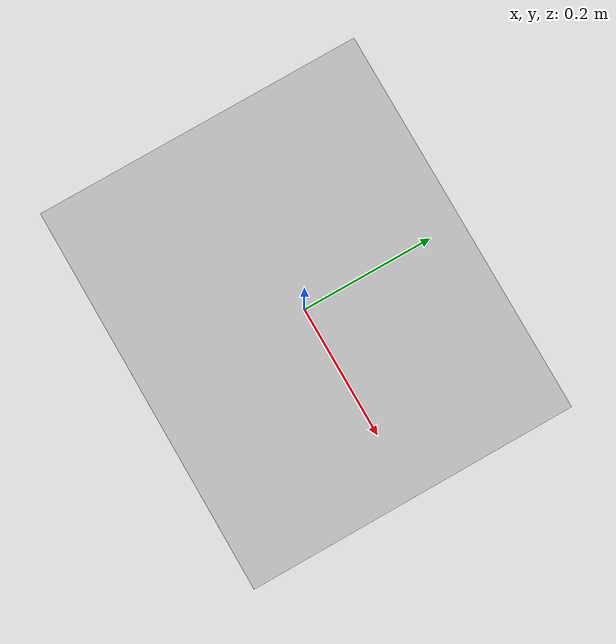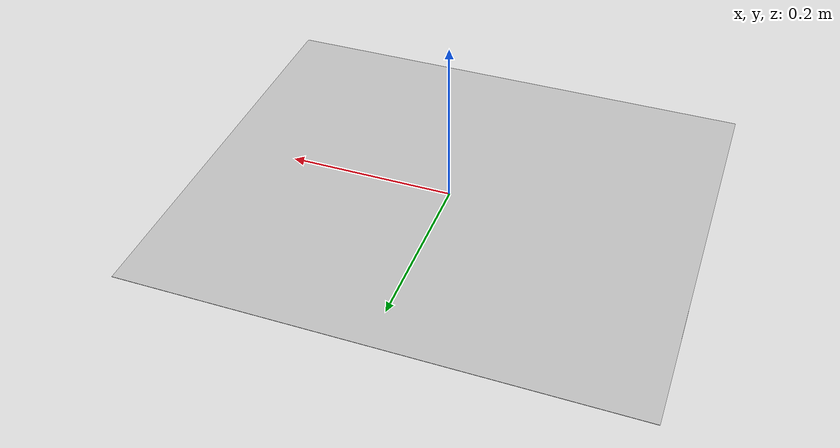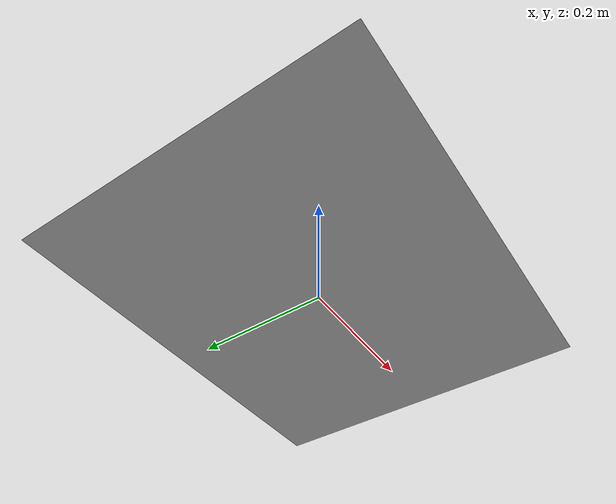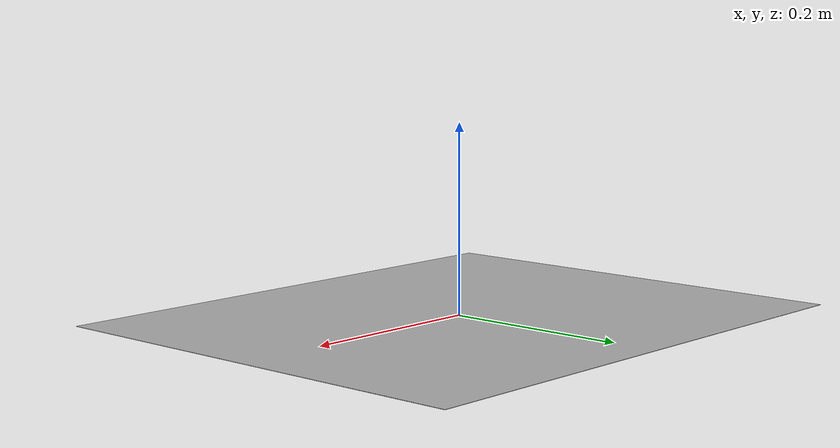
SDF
<?xml version="1.0" encoding="UTF-8"?>
<sdf version="1.4">
   <model name="vc_black_track_turn">
      <static>true</static>
      <link name="link">
         <collision name="collision">
            <geometry>
               <plane>
                  <normal>0 0 1</normal>
                  <size>0.596 0.5</size>
               </plane>
            </geometry>
            <surface>
               <friction>
                  <ode>
                     <mu>100</mu>
                     <mu2>50</mu2>
                  </ode>
               </friction>
            </surface>
         </collision>
         <visual name="visual">
            <cast_shadows>false</cast_shadows>
            <geometry>
               <plane>
                  <normal>0 0 1</normal>
                  <size>0.596 0.5</size>
               </plane>
            </geometry>
            <material>
               <script>
                  <uri>model://vc_black_track_turn/materials/scripts</uri>
                  <uri>model://vc_black_track_turn/materials/textures/</uri>
                  <name>VC_Black_Track_Turn/Image</name>
               </script>
            </material>
         </visual>
      </link>
   </model>
</sdf>
